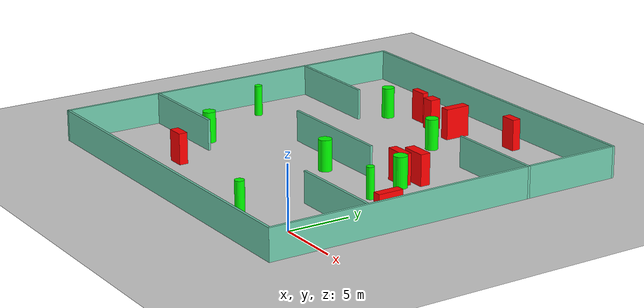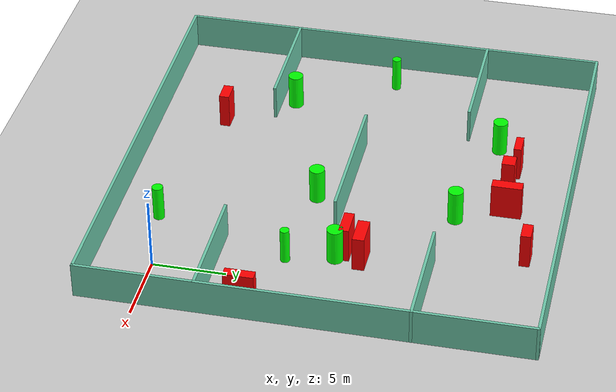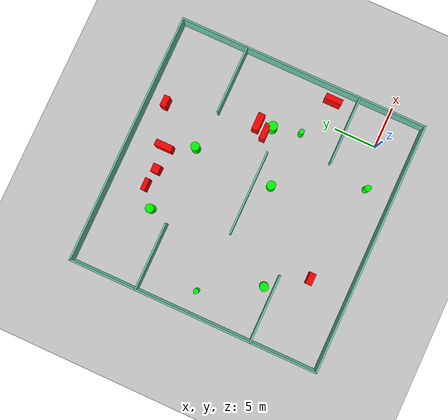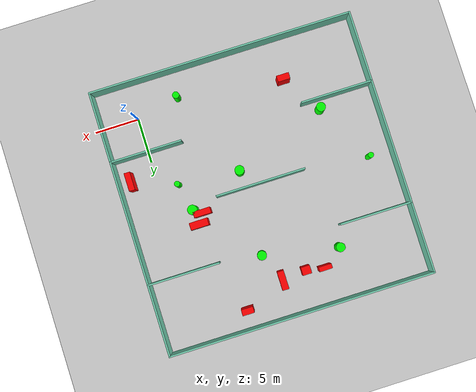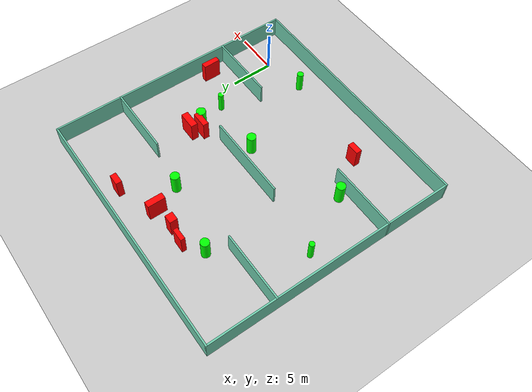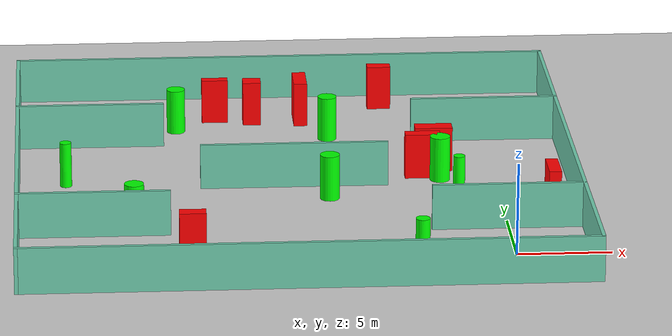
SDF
<sdf version="1.7">
 <world name="default">
  <light name="sun" type="directional">
   <pose>0 0 10 0 -0 0</pose>
   <diffuse>0.8 0.8 0.8 1</diffuse>
   <specular>0.2 0.2 0.2 1</specular>
   <attenuation>
    <range>1000</range>
    <constant>0.9</constant>
    <linear>0.01</linear>
    <quadratic>0.001</quadratic>
   </attenuation>
   <direction>-0.5 0.1 -0.9</direction>
   <spot><inner_angle>0</inner_angle><outer_angle>0</outer_angle><falloff>0</falloff></spot>
  </light>
  <model name="ground_plane">
   <static>1</static>
   <link name="link">
    <collision name="collision">
     <geometry><plane><normal>0 0 1</normal><size>100 100</size></plane></geometry>
     <surface>
      <contact><collide_bitmask>65535</collide_bitmask></contact>
      <friction><ode><mu>100</mu><mu2>50</mu2></ode></friction>
     </surface>
    </collision>
    <visual name="visual">
     <cast_shadows>0</cast_shadows>
     <geometry><plane><normal>0 0 1</normal><size>100 100</size></plane></geometry>
     <material>
      <script><uri>file://media/materials/scripts/gazebo.material</uri><name>Gazebo/Grey</name></script>
     </material>
    </visual>
   </link>
  </model>
  <gravity>0 0 -9.8</gravity>
  <magnetic_field>6e-06 2.3e-05 -4.2e-05</magnetic_field>
  <atmosphere type="adiabatic"/>
  <physics type="ode">
   <max_step_size>0.001</max_step_size>
   <real_time_factor>1</real_time_factor>
   <real_time_update_rate>1000</real_time_update_rate>
  </physics>
  <scene><ambient>0.4 0.4 0.4 1</ambient><background>0.7 0.7 0.7 1</background><shadows>1</shadows></scene>
  <spherical_coordinates>
   <surface_model>EARTH_WGS84</surface_model>
   <latitude_deg>0</latitude_deg>
   <longitude_deg>0</longitude_deg>
   <elevation>0</elevation>
   <heading_deg>0</heading_deg>
  </spherical_coordinates>
  <model name="my_base_walls">
   <link name="Wall_10">
    <collision name="Wall_10_Collision">
     <geometry><box><size>8.2 0.2 2.5</size></box></geometry>
     <pose>0 0 1.25 0 -0 0</pose>
    </collision>
    <visual name="Wall_10_Visual">
     <pose>0 0 1.25 0 -0 0</pose>
     <geometry><box><size>8.2 0.2 2.5</size></box></geometry>
     <material>
      <script><uri>file://media/materials/scripts/gazebo.material</uri><name>Gazebo/Grey</name></script>
      <ambient>0.435294 0.796078 0.67451 1</ambient>
     </material>
     <meta><layer>0</layer></meta>
    </visual>
    <pose>-11 -7 0 0 -0 0</pose>
   </link>
   <link name="Wall_12">
    <collision name="Wall_12_Collision">
     <geometry><box><size>8.2 0.2 2.5</size></box></geometry>
     <pose>0 0 1.25 0 -0 0</pose>
    </collision>
    <visual name="Wall_12_Visual">
     <pose>0 0 1.25 0 -0 0</pose>
     <geometry><box><size>8.2 0.2 2.5</size></box></geometry>
     <material>
      <script><uri>file://media/materials/scripts/gazebo.material</uri><name>Gazebo/Grey</name></script>
      <ambient>0.435294 0.796078 0.67451 1</ambient>
     </material>
     <meta><layer>0</layer></meta>
    </visual>
    <pose>-11 7 0 0 -0 0</pose>
   </link>
   <link name="Wall_14">
    <collision name="Wall_14_Collision">
     <geometry><box><size>8.2 0.2 2.5</size></box></geometry>
     <pose>0 0 1.25 0 -0 0</pose>
    </collision>
    <visual name="Wall_14_Visual">
     <pose>0 0 1.25 0 -0 0</pose>
     <geometry><box><size>8.2 0.2 2.5</size></box></geometry>
     <material>
      <script><uri>file://media/materials/scripts/gazebo.material</uri><name>Gazebo/Grey</name></script>
      <ambient>0.435294 0.796078 0.67451 1</ambient>
     </material>
     <meta><layer>0</layer></meta>
    </visual>
    <pose>11 7 0 0 -0 3.14159</pose>
   </link>
   <link name="Wall_16">
    <collision name="Wall_16_Collision">
     <geometry><box><size>10.2 0.2 2.5</size></box></geometry>
     <pose>0 0 1.25 0 -0 0</pose>
    </collision>
    <visual name="Wall_16_Visual">
     <pose>0 0 1.25 0 -0 0</pose>
     <geometry><box><size>10.2 0.2 2.5</size></box></geometry>
     <material>
      <script><uri>file://media/materials/scripts/gazebo.material</uri><name>Gazebo/Grey</name></script>
      <ambient>0.435294 0.796078 0.67451 1</ambient>
     </material>
     <meta><layer>0</layer></meta>
    </visual>
    <pose>0 0 0 0 -0 3.14159</pose>
   </link>
   <link name="Wall_2">
    <collision name="Wall_2_Collision">
     <geometry><box><size>30.2 0.2 2.5</size></box></geometry>
     <pose>0 0 1.25 0 -0 0</pose>
    </collision>
    <visual name="Wall_2_Visual">
     <pose>0 0 1.25 0 -0 0</pose>
     <geometry><box><size>30.2 0.2 2.5</size></box></geometry>
     <material>
      <script><uri>file://media/materials/scripts/gazebo.material</uri><name>Gazebo/Grey</name></script>
      <ambient>0.435294 0.796078 0.67451 1</ambient>
     </material>
     <meta><layer>0</layer></meta>
    </visual>
    <pose>0 -15 0 0 -0 3.14159</pose>
   </link>
   <link name="Wall_3">
    <collision name="Wall_3_Collision">
     <geometry><box><size>30.2 0.2 2.5</size></box></geometry>
     <pose>0 0 1.25 0 -0 0</pose>
    </collision>
    <visual name="Wall_3_Visual">
     <pose>0 0 1.25 0 -0 0</pose>
     <geometry><box><size>30.2 0.2 2.5</size></box></geometry>
     <material>
      <script><uri>file://media/materials/scripts/gazebo.material</uri><name>Gazebo/Grey</name></script>
      <ambient>0.435294 0.796078 0.67451 1</ambient>
     </material>
     <meta><layer>0</layer></meta>
    </visual>
    <pose>-15 0 0 0 -0 1.5708</pose>
   </link>
   <link name="Wall_4">
    <collision name="Wall_4_Collision">
     <geometry><box><size>30.2 0.2 2.5</size></box></geometry>
     <pose>0 0 1.25 0 -0 0</pose>
    </collision>
    <visual name="Wall_4_Visual">
     <pose>0 0 1.25 0 -0 0</pose>
     <geometry><box><size>30.2 0.2 2.5</size></box></geometry>
     <material>
      <script><uri>file://media/materials/scripts/gazebo.material</uri><name>Gazebo/Grey</name></script>
      <ambient>0.435294 0.796078 0.67451 1</ambient>
     </material>
     <meta><layer>0</layer></meta>
    </visual>
    <pose>0 15 0 0 -0 0</pose>
   </link>
   <link name="Wall_6">
    <collision name="Wall_6_Collision">
     <geometry><box><size>30.2 0.2 2.5</size></box></geometry>
     <pose>0 0 1.25 0 -0 0</pose>
    </collision>
    <visual name="Wall_6_Visual">
     <pose>0 0 1.25 0 -0 0</pose>
     <geometry><box><size>30.2 0.2 2.5</size></box></geometry>
     <material>
      <script><uri>file://media/materials/scripts/gazebo.material</uri><name>Gazebo/Grey</name></script>
      <ambient>0.435294 0.796078 0.67451 1</ambient>
     </material>
     <meta><layer>0</layer></meta>
    </visual>
    <pose>15 0 0 0 -0 1.5708</pose>
   </link>
   <link name="Wall_8">
    <collision name="Wall_8_Collision">
     <geometry><box><size>8.2 0.2 2.5</size></box></geometry>
     <pose>0 0 1.25 0 -0 0</pose>
    </collision>
    <visual name="Wall_8_Visual">
     <pose>0 0 1.25 0 -0 0</pose>
     <geometry><box><size>8.2 0.2 2.5</size></box></geometry>
     <material>
      <script><uri>file://media/materials/scripts/gazebo.material</uri><name>Gazebo/Grey</name></script>
      <ambient>0.435294 0.796078 0.67451 1</ambient>
     </material>
     <meta><layer>0</layer></meta>
    </visual>
    <pose>11 -7 0 0 -0 3.14159</pose>
   </link>
   <static>1</static>
   <pose>-11 11 0 0 -0 0</pose>
  </model>
  <model name="cylinder1">
   <static>1</static>
   <link name="link">
    <inertial>
     <mass>1</mass>
     <inertia><ixx>0.5</ixx><ixy>0</ixy><ixz>0</ixz><iyy>0.5</iyy><iyz>0</iyz><izz>1</izz></inertia>
    </inertial>
    <collision name="collision">
     <geometry><cylinder><radius>0.5494360836379761</radius><length>2.5</length></cylinder></geometry>
    </collision>
    <visual name="visual">
     <geometry><cylinder><radius>0.5494360836379761</radius><length>2.5</length></cylinder></geometry>
     <material>
      <ambient>0 1 0 1</ambient>
      <diffuse>0 1 0 1</diffuse>
      <specular>0.1 0.1 0.1 1</specular>
      <emissive>0 0 0 0</emissive>
     </material>
    </visual>
   </link>
   <pose>-3.0014252816858296 11.629616389434023 1.25 0 0 0</pose>
  </model>
  <model name="cylinder2">
   <static>1</static>
   <link name="link">
    <inertial>
     <mass>1</mass>
     <inertia><ixx>0.5</ixx><ixy>0</ixy><ixz>0</ixz><iyy>0.5</iyy><iyz>0</iyz><izz>1</izz></inertia>
    </inertial>
    <collision name="collision">
     <geometry><cylinder><radius>0.5198288212882216</radius><length>2.5</length></cylinder></geometry>
    </collision>
    <visual name="visual">
     <geometry><cylinder><radius>0.5198288212882216</radius><length>2.5</length></cylinder></geometry>
     <material>
      <ambient>0 1 0 1</ambient>
      <diffuse>0 1 0 1</diffuse>
      <specular>0.1 0.1 0.1 1</specular>
      <emissive>0 0 0 0</emissive>
     </material>
    </visual>
   </link>
   <pose>-19.799058642094106 5.102397009931332 1.25 0 0 0</pose>
  </model>
  <model name="cylinder3">
   <static>1</static>
   <link name="link">
    <inertial>
     <mass>1</mass>
     <inertia><ixx>0.5</ixx><ixy>0</ixy><ixz>0</ixz><iyy>0.5</iyy><iyz>0</iyz><izz>1</izz></inertia>
    </inertial>
    <collision name="collision">
     <geometry><cylinder><radius>0.5306467692528999</radius><length>2.5</length></cylinder></geometry>
    </collision>
    <visual name="visual">
     <geometry><cylinder><radius>0.5306467692528999</radius><length>2.5</length></cylinder></geometry>
     <material>
      <ambient>0 1 0 1</ambient>
      <diffuse>0 1 0 1</diffuse>
      <specular>0.1 0.1 0.1 1</specular>
      <emissive>0 0 0 0</emissive>
     </material>
    </visual>
   </link>
   <pose>-9.187625489332948 9.045025464720409 1.25 0 0 0</pose>
  </model>
  <model name="cylinder4">
   <static>1</static>
   <link name="link">
    <inertial>
     <mass>1</mass>
     <inertia><ixx>0.5</ixx><ixy>0</ixy><ixz>0</ixz><iyy>0.5</iyy><iyz>0</iyz><izz>1</izz></inertia>
    </inertial>
    <collision name="collision">
     <geometry><cylinder><radius>0.37657494967968347</radius><length>2.5</length></cylinder></geometry>
    </collision>
    <visual name="visual">
     <geometry><cylinder><radius>0.37657494967968347</radius><length>2.5</length></cylinder></geometry>
     <material>
      <ambient>0 1 0 1</ambient>
      <diffuse>0 1 0 1</diffuse>
      <specular>0.1 0.1 0.1 1</specular>
      <emissive>0 0 0 0</emissive>
     </material>
    </visual>
   </link>
   <pose>-5.0022224026689575 -0.9438487778931566 1.25 0 0 0</pose>
  </model>
  <model name="cylinder5">
   <static>1</static>
   <link name="link">
    <inertial>
     <mass>1</mass>
     <inertia><ixx>0.5</ixx><ixy>0</ixy><ixz>0</ixz><iyy>0.5</iyy><iyz>0</iyz><izz>1</izz></inertia>
    </inertial>
    <collision name="collision">
     <geometry><cylinder><radius>0.5070486626274443</radius><length>2.5</length></cylinder></geometry>
    </collision>
    <visual name="visual">
     <geometry><cylinder><radius>0.5070486626274443</radius><length>2.5</length></cylinder></geometry>
     <material>
      <ambient>0 1 0 1</ambient>
      <diffuse>0 1 0 1</diffuse>
      <specular>0.1 0.1 0.1 1</specular>
      <emissive>0 0 0 0</emissive>
     </material>
    </visual>
   </link>
   <pose>-17.149597025068648 20.360983416832156 1.25 0 0 0</pose>
  </model>
  <model name="cylinder6">
   <static>1</static>
   <link name="link">
    <inertial>
     <mass>1</mass>
     <inertia><ixx>0.5</ixx><ixy>0</ixy><ixz>0</ixz><iyy>0.5</iyy><iyz>0</iyz><izz>1</izz></inertia>
    </inertial>
    <collision name="collision">
     <geometry><cylinder><radius>0.31595427228446993</radius><length>2.5</length></cylinder></geometry>
    </collision>
    <visual name="visual">
     <geometry><cylinder><radius>0.31595427228446993</radius><length>2.5</length></cylinder></geometry>
     <material>
      <ambient>0 1 0 1</ambient>
      <diffuse>0 1 0 1</diffuse>
      <specular>0.1 0.1 0.1 1</specular>
      <emissive>0 0 0 0</emissive>
     </material>
    </visual>
   </link>
   <pose>-23.383943923726694 11.789811185171022 1.25 0 0 0</pose>
  </model>
  <model name="cylinder7">
   <static>1</static>
   <link name="link">
    <inertial>
     <mass>1</mass>
     <inertia><ixx>0.5</ixx><ixy>0</ixy><ixz>0</ixz><iyy>0.5</iyy><iyz>0</iyz><izz>1</izz></inertia>
    </inertial>
    <collision name="collision">
     <geometry><cylinder><radius>0.5206415759859778</radius><length>2.5</length></cylinder></geometry>
    </collision>
    <visual name="visual">
     <geometry><cylinder><radius>0.5206415759859778</radius><length>2.5</length></cylinder></geometry>
     <material>
      <ambient>0 1 0 1</ambient>
      <diffuse>0 1 0 1</diffuse>
      <specular>0.1 0.1 0.1 1</specular>
      <emissive>0 0 0 0</emissive>
     </material>
    </visual>
   </link>
   <pose>-8.734605776320818 18.641816813514666 1.25 0 0 0</pose>
  </model>
  <model name="cylinder8">
   <static>1</static>
   <link name="link">
    <inertial>
     <mass>1</mass>
     <inertia><ixx>0.5</ixx><ixy>0</ixy><ixz>0</ixz><iyy>0.5</iyy><iyz>0</iyz><izz>1</izz></inertia>
    </inertial>
    <collision name="collision">
     <geometry><cylinder><radius>0.31584149647661774</radius><length>2.5</length></cylinder></geometry>
    </collision>
    <visual name="visual">
     <geometry><cylinder><radius>0.31584149647661774</radius><length>2.5</length></cylinder></geometry>
     <material>
      <ambient>0 1 0 1</ambient>
      <diffuse>0 1 0 1</diffuse>
      <specular>0.1 0.1 0.1 1</specular>
      <emissive>0 0 0 0</emissive>
     </material>
    </visual>
   </link>
   <pose>-2.2554202306673687 8.434885906704942 1.25 0 0 0</pose>
  </model>
  <model name="box1">
   <static>1</static>
   <link name="link">
    <inertial>
     <mass>1</mass>
     <inertia><ixx>0.083</ixx><ixy>0</ixy><ixz>0</ixz><iyy>0.083</iyy><iyz>0</iyz><izz>0.083</izz></inertia>
    </inertial>
    <collision name="collision">
     <geometry><box><size>1.4031045737504528 0.7021180919238259 2.5</size></box></geometry>
    </collision>
    <visual name="visual">
     <geometry><box><size>1.4031045737504528 0.7021180919238259 2.5</size></box></geometry>
     <material>
      <ambient>1 0 0 1</ambient>
      <diffuse>1 0 0 1</diffuse>
      <specular>0.1 0.1 0.1 1</specular>
      <emissive>0 0 0 0</emissive>
     </material>
    </visual>
    <sensor name="my_contact" type="contact">
     <contact><collision>box_collision</collision><topic>__default_topic__</topic></contact>
    </sensor>
   </link>
   <pose>-16.8505028034448 0.7325559029779258 1.25 0 0 0</pose>
  </model>
  <model name="box2">
   <static>1</static>
   <link name="link">
    <inertial>
     <mass>1</mass>
     <inertia><ixx>0.083</ixx><ixy>0</ixy><ixz>0</ixz><iyy>0.083</iyy><iyz>0</iyz><izz>0.083</izz></inertia>
    </inertial>
    <collision name="collision">
     <geometry><box><size>1.9229051192655189 0.6820182114233637 2.5</size></box></geometry>
    </collision>
    <visual name="visual">
     <geometry><box><size>1.9229051192655189 0.6820182114233637 2.5</size></box></geometry>
     <material>
      <ambient>1 0 0 1</ambient>
      <diffuse>1 0 0 1</diffuse>
      <specular>0.1 0.1 0.1 1</specular>
      <emissive>0 0 0 0</emissive>
     </material>
    </visual>
    <sensor name="my_contact" type="contact">
     <contact><collision>box_collision</collision><topic>__default_topic__</topic></contact>
    </sensor>
   </link>
   <pose>-3.921029930485524 12.204630846452737 1.25 0 0 0</pose>
  </model>
  <model name="box3">
   <static>1</static>
   <link name="link">
    <inertial>
     <mass>1</mass>
     <inertia><ixx>0.083</ixx><ixy>0</ixy><ixz>0</ixz><iyy>0.083</iyy><iyz>0</iyz><izz>0.083</izz></inertia>
    </inertial>
    <collision name="collision">
     <geometry><box><size>1.4621582135364668 0.524057534712098 2.5</size></box></geometry>
    </collision>
    <visual name="visual">
     <geometry><box><size>1.4621582135364668 0.524057534712098 2.5</size></box></geometry>
     <material>
      <ambient>1 0 0 1</ambient>
      <diffuse>1 0 0 1</diffuse>
      <specular>0.1 0.1 0.1 1</specular>
      <emissive>0 0 0 0</emissive>
     </material>
    </visual>
    <sensor name="my_contact" type="contact">
     <contact><collision>box_collision</collision><topic>__default_topic__</topic></contact>
    </sensor>
   </link>
   <pose>-14.90864499859023 21.968194292010566 1.25 0 0 0</pose>
  </model>
  <model name="box4">
   <static>1</static>
   <link name="link">
    <inertial>
     <mass>1</mass>
     <inertia><ixx>0.083</ixx><ixy>0</ixy><ixz>0</ixz><iyy>0.083</iyy><iyz>0</iyz><izz>0.083</izz></inertia>
    </inertial>
    <collision name="collision">
     <geometry><box><size>0.7451968770545104 2.078262111857529 2.5</size></box></geometry>
    </collision>
    <visual name="visual">
     <geometry><box><size>0.7451968770545104 2.078262111857529 2.5</size></box></geometry>
     <material>
      <ambient>1 0 0 1</ambient>
      <diffuse>1 0 0 1</diffuse>
      <specular>0.1 0.1 0.1 1</specular>
      <emissive>0 0 0 0</emissive>
     </material>
    </visual>
    <sensor name="my_contact" type="contact">
     <contact><collision>box_collision</collision><topic>__default_topic__</topic></contact>
    </sensor>
   </link>
   <pose>-10.098593328371141 21.891732975048473 1.25 0 0 0</pose>
  </model>
  <model name="box5">
   <static>1</static>
   <link name="link">
    <inertial>
     <mass>1</mass>
     <inertia><ixx>0.083</ixx><ixy>0</ixy><ixz>0</ixz><iyy>0.083</iyy><iyz>0</iyz><izz>0.083</izz></inertia>
    </inertial>
    <collision name="collision">
     <geometry><box><size>1.3163759977000895 0.6922584635318481 2.5</size></box></geometry>
    </collision>
    <visual name="visual">
     <geometry><box><size>1.3163759977000895 0.6922584635318481 2.5</size></box></geometry>
     <material>
      <ambient>1 0 0 1</ambient>
      <diffuse>1 0 0 1</diffuse>
      <specular>0.1 0.1 0.1 1</specular>
      <emissive>0 0 0 0</emissive>
     </material>
    </visual>
    <sensor name="my_contact" type="contact">
     <contact><collision>box_collision</collision><topic>__default_topic__</topic></contact>
    </sensor>
   </link>
   <pose>-5.464829213414864 23.885036275373974 1.25 0 0 0</pose>
  </model>
  <model name="box6">
   <static>1</static>
   <link name="link">
    <inertial>
     <mass>1</mass>
     <inertia><ixx>0.083</ixx><ixy>0</ixy><ixz>0</ixz><iyy>0.083</iyy><iyz>0</iyz><izz>0.083</izz></inertia>
    </inertial>
    <collision name="collision">
     <geometry><box><size>0.6657296494318541 2.03859093604516 2.5</size></box></geometry>
    </collision>
    <visual name="visual">
     <geometry><box><size>0.6657296494318541 2.03859093604516 2.5</size></box></geometry>
     <material>
      <ambient>1 0 0 1</ambient>
      <diffuse>1 0 0 1</diffuse>
      <specular>0.1 0.1 0.1 1</specular>
      <emissive>0 0 0 0</emissive>
     </material>
    </visual>
    <sensor name="my_contact" type="contact">
     <contact><collision>box_collision</collision><topic>__default_topic__</topic></contact>
    </sensor>
   </link>
   <pose>2.6260933493619874 6.622364826938881 1.25 0 0 0</pose>
  </model>
  <model name="box7">
   <static>1</static>
   <link name="link">
    <inertial>
     <mass>1</mass>
     <inertia><ixx>0.083</ixx><ixy>0</ixy><ixz>0</ixz><iyy>0.083</iyy><iyz>0</iyz><izz>0.083</izz></inertia>
    </inertial>
    <collision name="collision">
     <geometry><box><size>1.0088721075593616 0.9051337659497501 2.5</size></box></geometry>
    </collision>
    <visual name="visual">
     <geometry><box><size>1.0088721075593616 0.9051337659497501 2.5</size></box></geometry>
     <material>
      <ambient>1 0 0 1</ambient>
      <diffuse>1 0 0 1</diffuse>
      <specular>0.1 0.1 0.1 1</specular>
      <emissive>0 0 0 0</emissive>
     </material>
    </visual>
    <sensor name="my_contact" type="contact">
     <contact><collision>box_collision</collision><topic>__default_topic__</topic></contact>
    </sensor>
   </link>
   <pose>-12.825844330123541 21.607675565383346 1.25 0 0 0</pose>
  </model>
  <model name="box8">
   <static>1</static>
   <link name="link">
    <inertial>
     <mass>1</mass>
     <inertia><ixx>0.083</ixx><ixy>0</ixy><ixz>0</ixz><iyy>0.083</iyy><iyz>0</iyz><izz>0.083</izz></inertia>
    </inertial>
    <collision name="collision">
     <geometry><box><size>2.0442259489143755 0.8076961627109696 2.5</size></box></geometry>
    </collision>
    <visual name="visual">
     <geometry><box><size>2.0442259489143755 0.8076961627109696 2.5</size></box></geometry>
     <material>
      <ambient>1 0 0 1</ambient>
      <diffuse>1 0 0 1</diffuse>
      <specular>0.1 0.1 0.1 1</specular>
      <emissive>0 0 0 0</emissive>
     </material>
    </visual>
    <sensor name="my_contact" type="contact">
     <contact><collision>box_collision</collision><topic>__default_topic__</topic></contact>
    </sensor>
   </link>
   <pose>-3.238592123257998 13.32492337821142 1.25 0 0 0</pose>
  </model>
 </world>
</sdf>
